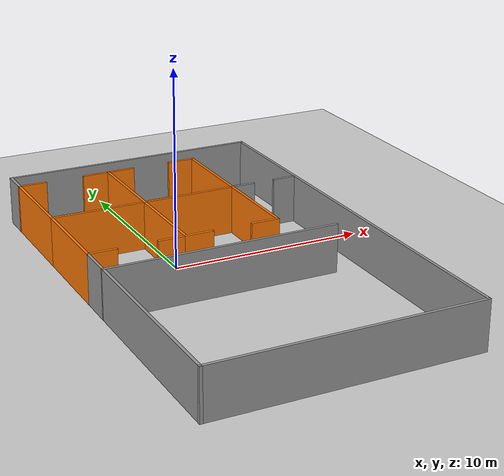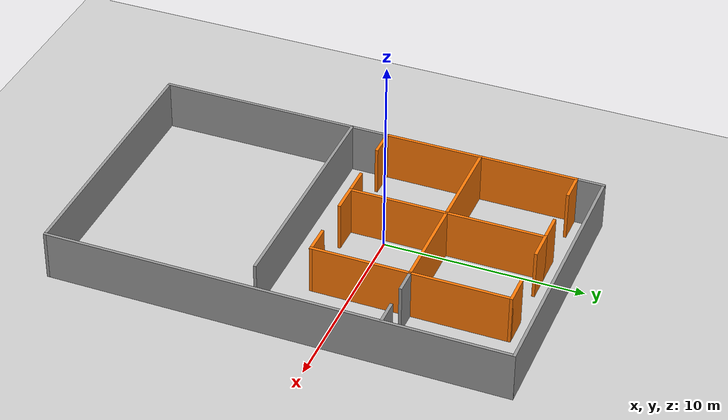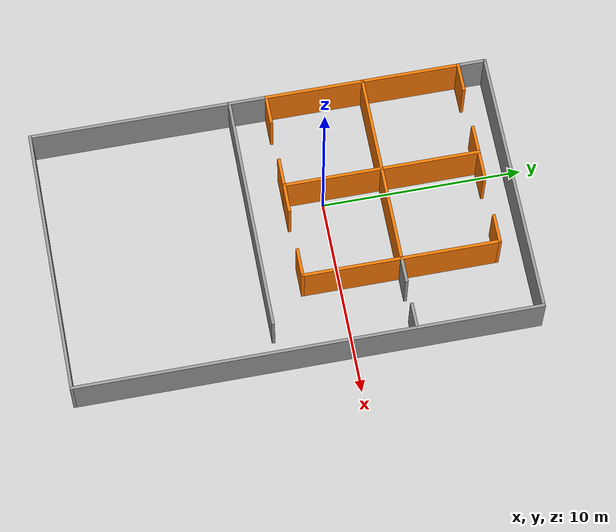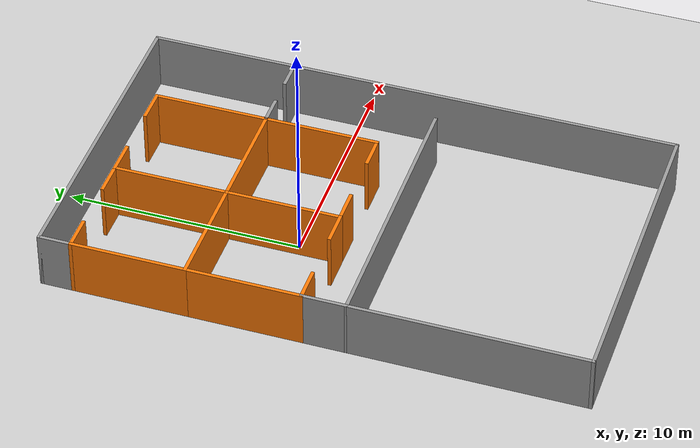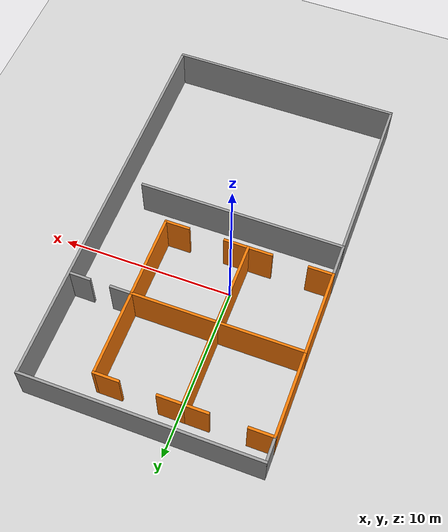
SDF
<sdf version="1.6">
 <world name="default">
  <light name="sun" type="directional">
   <pose>0 0 10 0 -0 0</pose>
   <diffuse>0.8 0.8 0.8 1</diffuse>
   <specular>0.1 0.1 0.1 1</specular>
   <attenuation>
    <range>1000</range>
    <constant>0.9</constant>
    <linear>0.01</linear>
    <quadratic>0.001</quadratic>
   </attenuation>
   <direction>-0.5 0.5 -1</direction>
  </light>
  <model name="ground_plane">
   <static>1</static>
   <link name="link">
    <collision name="collision">
     <geometry><plane><normal>0 0 1</normal><size>100 100</size></plane></geometry>
     <surface><friction><ode><mu>100</mu><mu2>50</mu2></ode></friction></surface>
    </collision>
    <visual name="visual">
     <cast_shadows>0</cast_shadows>
     <geometry><plane><normal>0 0 1</normal><size>100 100</size></plane></geometry>
     <material>
      <script><uri>file://media/materials/scripts/gazebo.material</uri><name>Gazebo/Grey</name></script>
     </material>
    </visual>
   </link>
  </model>
  <gravity>0 0 -9.8</gravity>
  <magnetic_field>6e-06 2.3e-05 -4.2e-05</magnetic_field>
  <atmosphere type="adiabatic"/>
  <physics name="default_physics" default="0" type="ode">
   <max_step_size>0.001</max_step_size>
   <real_time_factor>1</real_time_factor>
   <real_time_update_rate>1000</real_time_update_rate>
  </physics>
  <scene><ambient>0.4 0.4 0.4 1</ambient><background>0.7 0.7 0.7 1</background><shadows>1</shadows></scene>
  <spherical_coordinates>
   <surface_model>EARTH_WGS84</surface_model>
   <latitude_deg>0</latitude_deg>
   <longitude_deg>0</longitude_deg>
   <elevation>0</elevation>
   <heading_deg>0</heading_deg>
  </spherical_coordinates>
  <model name="x_com_test_room">
   <pose>1.485 -2.255 0 0 -0 0</pose>
   <link name="Wall_0">
    <collision name="Wall_0_Collision">
     <geometry><box><size>5 0.15 2.5</size></box></geometry>
     <pose>0 0 1.25 0 -0 0</pose>
    </collision>
    <visual name="Wall_0_Visual">
     <pose>0 0 1.25 0 -0 0</pose>
     <geometry><box><size>5 0.15 2.5</size></box></geometry>
     <material>
      <script><uri>file://media/materials/scripts/gazebo.material</uri><name>Gazebo/Grey</name></script>
      <ambient>0.996078 0.47451 0.0196078 1</ambient>
     </material>
    </visual>
    <pose>-1.825 2.8 0 0 -0 1.5708</pose>
   </link>
   <link name="Wall_10">
    <collision name="Wall_10_Collision">
     <geometry><box><size>1.5 0.15 2.5</size></box></geometry>
     <pose>0 0 1.25 0 -0 0</pose>
    </collision>
    <visual name="Wall_10_Visual">
     <pose>0 0 1.25 0 -0 0</pose>
     <geometry><box><size>1.5 0.15 2.5</size></box></geometry>
     <material>
      <script><uri>file://media/materials/scripts/gazebo.material</uri><name>Gazebo/Grey</name></script>
      <ambient>0.996078 0.47451 0.0196078 1</ambient>
     </material>
    </visual>
    <pose>-2.5 0.375 0 0 -0 3.14159</pose>
   </link>
   <link name="Wall_13">
    <collision name="Wall_13_Collision">
     <geometry><box><size>5 0.15 2.5</size></box></geometry>
     <pose>0 0 1.25 0 -0 0</pose>
    </collision>
    <visual name="Wall_13_Visual">
     <pose>0 0 1.25 0 -0 0</pose>
     <geometry><box><size>5 0.15 2.5</size></box></geometry>
     <material>
      <script><uri>file://media/materials/scripts/gazebo.material</uri><name>Gazebo/Grey</name></script>
      <ambient>0.996078 0.47451 0.0196078 1</ambient>
     </material>
    </visual>
    <pose>-4.25 5.225 0 0 -0 3.14159</pose>
   </link>
   <link name="Wall_14">
    <collision name="Wall_14_Collision">
     <geometry><box><size>5 0.15 2.5</size></box></geometry>
     <pose>0 0 1.25 0 -0 0</pose>
    </collision>
    <visual name="Wall_14_Visual">
     <pose>0 0 1.25 0 -0 0</pose>
     <geometry><box><size>5 0.15 2.5</size></box></geometry>
     <material>
      <script><uri>file://media/materials/scripts/gazebo.material</uri><name>Gazebo/Grey</name></script>
      <ambient>0.996078 0.47451 0.0196078 1</ambient>
     </material>
    </visual>
    <pose>-6.675 2.8 0 0 0 -1.5708</pose>
   </link>
   <link name="Wall_15">
    <collision name="Wall_15_Collision">
     <geometry><box><size>1.5 0.15 2.5</size></box></geometry>
     <pose>0 0 1.25 0 -0 0</pose>
    </collision>
    <visual name="Wall_15_Visual">
     <pose>0 0 1.25 0 -0 0</pose>
     <geometry><box><size>1.5 0.15 2.5</size></box></geometry>
     <material>
      <script><uri>file://media/materials/scripts/gazebo.material</uri><name>Gazebo/Grey</name></script>
      <ambient>0.996078 0.47451 0.0196078 1</ambient>
     </material>
    </visual>
    <pose>-6 0.375 0 0 -0 0</pose>
   </link>
   <link name="Wall_17">
    <collision name="Wall_17_Collision">
     <geometry><box><size>12 0.15 2.5</size></box></geometry>
     <pose>0 0 1.25 0 -0 0</pose>
    </collision>
    <visual name="Wall_17_Visual">
     <pose>0 0 1.25 0 -0 0</pose>
     <geometry><box><size>12 0.15 2.5</size></box></geometry>
     <material>
      <script><uri>file://media/materials/scripts/gazebo.material</uri><name>Gazebo/Grey</name></script>
      <ambient>1 1 1 1</ambient>
     </material>
    </visual>
    <pose>-0.75 -1.475 0 0 -0 3.14159</pose>
   </link>
   <link name="Wall_18">
    <collision name="Wall_18_Collision">
     <geometry><box><size>2 0.15 2.5</size></box></geometry>
     <pose>0 0 1.25 0 -0 0</pose>
    </collision>
    <visual name="Wall_18_Visual">
     <pose>0 0 1.25 0 -0 0</pose>
     <geometry><box><size>2 0.15 2.5</size></box></geometry>
     <material>
      <script><uri>file://media/materials/scripts/gazebo.material</uri><name>Gazebo/Grey</name></script>
      <ambient>1 1 1 1</ambient>
     </material>
    </visual>
    <pose>-6.675 -0.55 0 0 -0 1.5708</pose>
   </link>
   <link name="Wall_2">
    <collision name="Wall_2_Collision">
     <geometry><box><size>5 0.15 2.5</size></box></geometry>
     <pose>0 0 1.25 0 -0 0</pose>
    </collision>
    <visual name="Wall_2_Visual">
     <pose>0 0 1.25 0 -0 0</pose>
     <geometry><box><size>5 0.15 2.5</size></box></geometry>
     <material>
      <script><uri>file://media/materials/scripts/gazebo.material</uri><name>Gazebo/Grey</name></script>
      <ambient>0.996078 0.47451 0.0196078 1</ambient>
     </material>
    </visual>
    <pose>0.6 5.225 0 0 -0 3.14159</pose>
   </link>
   <link name="Wall_22">
    <collision name="Wall_22_Collision">
     <geometry><box><size>5 0.15 2.5</size></box></geometry>
     <pose>0 0 1.25 0 -0 0</pose>
    </collision>
    <visual name="Wall_22_Visual">
     <pose>0 0 1.25 0 -0 0</pose>
     <geometry><box><size>5 0.15 2.5</size></box></geometry>
     <material>
      <script><uri>file://media/materials/scripts/gazebo.material</uri><name>Gazebo/Grey</name></script>
      <ambient>0.996078 0.47451 0.0196078 1</ambient>
     </material>
    </visual>
    <pose>-6.675 7.65 0 0 0 -1.5708</pose>
   </link>
   <link name="Wall_24">
    <collision name="Wall_24_Collision">
     <geometry><box><size>5 0.15 2.5</size></box></geometry>
     <pose>0 0 1.25 0 -0 0</pose>
    </collision>
    <visual name="Wall_24_Visual">
     <pose>0 0 1.25 0 -0 0</pose>
     <geometry><box><size>5 0.15 2.5</size></box></geometry>
     <material>
      <script><uri>file://media/materials/scripts/gazebo.material</uri><name>Gazebo/Grey</name></script>
      <ambient>0.996078 0.47451 0.0196078 1</ambient>
     </material>
    </visual>
    <pose>-1.825 7.65 0 0 -0 1.5708</pose>
   </link>
   <link name="Wall_27">
    <collision name="Wall_27_Collision">
     <geometry><box><size>5 0.15 2.5</size></box></geometry>
     <pose>0 0 1.25 0 -0 0</pose>
    </collision>
    <visual name="Wall_27_Visual">
     <pose>0 0 1.25 0 -0 0</pose>
     <geometry><box><size>5 0.15 2.5</size></box></geometry>
     <material>
      <script><uri>file://media/materials/scripts/gazebo.material</uri><name>Gazebo/Grey</name></script>
      <ambient>0.996078 0.47451 0.0196078 1</ambient>
     </material>
    </visual>
    <pose>3.025 7.65 0 0 -0 1.5708</pose>
   </link>
   <link name="Wall_28">
    <collision name="Wall_28_Collision">
     <geometry><box><size>1.5 0.15 2.5</size></box></geometry>
     <pose>0 0 1.25 0 -0 0</pose>
    </collision>
    <visual name="Wall_28_Visual">
     <pose>0 0 1.25 0 -0 0</pose>
     <geometry><box><size>1.5 0.15 2.5</size></box></geometry>
     <material>
      <script><uri>file://media/materials/scripts/gazebo.material</uri><name>Gazebo/Grey</name></script>
      <ambient>0.996078 0.47451 0.0196078 1</ambient>
     </material>
    </visual>
    <pose>2.35 10.075 0 0 -0 3.14159</pose>
   </link>
   <link name="Wall_30">
    <collision name="Wall_30_Collision">
     <geometry><box><size>1.5 0.15 2.5</size></box></geometry>
     <pose>0 0 1.25 0 -0 0</pose>
    </collision>
    <visual name="Wall_30_Visual">
     <pose>0 0 1.25 0 -0 0</pose>
     <geometry><box><size>1.5 0.15 2.5</size></box></geometry>
     <material>
      <script><uri>file://media/materials/scripts/gazebo.material</uri><name>Gazebo/Grey</name></script>
      <ambient>0.996078 0.47451 0.0196078 1</ambient>
     </material>
    </visual>
    <pose>-1.15 10.075 0 0 -0 0</pose>
   </link>
   <link name="Wall_32">
    <collision name="Wall_32_Collision">
     <geometry><box><size>1.5 0.15 2.5</size></box></geometry>
     <pose>0 0 1.25 0 -0 0</pose>
    </collision>
    <visual name="Wall_32_Visual">
     <pose>0 0 1.25 0 -0 0</pose>
     <geometry><box><size>1.5 0.15 2.5</size></box></geometry>
     <material>
      <script><uri>file://media/materials/scripts/gazebo.material</uri><name>Gazebo/Grey</name></script>
      <ambient>0.996078 0.47451 0.0196078 1</ambient>
     </material>
    </visual>
    <pose>-2.5 10.075 0 0 -0 3.14159</pose>
   </link>
   <link name="Wall_34">
    <collision name="Wall_34_Collision">
     <geometry><box><size>1.5 0.15 2.5</size></box></geometry>
     <pose>0 0 1.25 0 -0 0</pose>
    </collision>
    <visual name="Wall_34_Visual">
     <pose>0 0 1.25 0 -0 0</pose>
     <geometry><box><size>1.5 0.15 2.5</size></box></geometry>
     <material>
      <script><uri>file://media/materials/scripts/gazebo.material</uri><name>Gazebo/Grey</name></script>
      <ambient>0.996078 0.47451 0.0196078 1</ambient>
     </material>
    </visual>
    <pose>-6 10.075 0 0 -0 0</pose>
   </link>
   <link name="Wall_4">
    <collision name="Wall_4_Collision">
     <geometry><box><size>5 0.15 2.5</size></box></geometry>
     <pose>0 0 1.25 0 -0 0</pose>
    </collision>
    <visual name="Wall_4_Visual">
     <pose>0 0 1.25 0 -0 0</pose>
     <geometry><box><size>5 0.15 2.5</size></box></geometry>
     <material>
      <script><uri>file://media/materials/scripts/gazebo.material</uri><name>Gazebo/Grey</name></script>
      <ambient>0.996078 0.47451 0.0196078 1</ambient>
     </material>
    </visual>
    <pose>3.025 2.8 0 0 0 -1.5708</pose>
   </link>
   <link name="Wall_5">
    <collision name="Wall_5_Collision">
     <geometry><box><size>1.5 0.15 2.5</size></box></geometry>
     <pose>0 0 1.25 0 -0 0</pose>
    </collision>
    <visual name="Wall_5_Visual">
     <pose>0 0 1.25 0 -0 0</pose>
     <geometry><box><size>1.5 0.15 2.5</size></box></geometry>
     <material>
      <script><uri>file://media/materials/scripts/gazebo.material</uri><name>Gazebo/Grey</name></script>
      <ambient>0.996078 0.47451 0.0196078 1</ambient>
     </material>
    </visual>
    <pose>2.35 0.375 0 0 -0 3.14159</pose>
   </link>
   <link name="Wall_54">
    <collision name="Wall_54_Collision">
     <geometry><box><size>1.5 0.15 2.5</size></box></geometry>
     <pose>0 0 1.25 0 -0 0</pose>
    </collision>
    <visual name="Wall_54_Visual">
     <pose>0 0 1.25 0 -0 0</pose>
     <geometry><box><size>1.5 0.15 2.5</size></box></geometry>
     <material>
      <script><uri>file://media/materials/scripts/gazebo.material</uri><name>Gazebo/Grey</name></script>
      <ambient>1 1 1 1</ambient>
     </material>
    </visual>
    <pose>-6.675 10.75 0 0 -0 1.5708</pose>
   </link>
   <link name="Wall_55">
    <collision name="Wall_55_Collision">
     <geometry><box><size>13.5 0.15 2.5</size></box></geometry>
     <pose>0 0 1.25 0 -0 0</pose>
    </collision>
    <visual name="Wall_55_Visual">
     <pose>0 0 1.25 0 -0 0</pose>
     <geometry><box><size>13.5 0.15 2.5</size></box></geometry>
     <material>
      <script><uri>file://media/materials/scripts/gazebo.material</uri><name>Gazebo/Grey</name></script>
      <ambient>1 1 1 1</ambient>
     </material>
    </visual>
    <pose>0 11.425 0 0 -0 0</pose>
   </link>
   <link name="Wall_56">
    <collision name="Wall_56_Collision">
     <geometry><box><size>23 0.15 2.5</size></box></geometry>
     <pose>0 0 1.25 0 -0 0</pose>
    </collision>
    <visual name="Wall_56_Visual">
     <pose>0 0 1.25 0 -0 0</pose>
     <geometry><box><size>23 0.15 2.5</size></box></geometry>
     <material>
      <script><uri>file://media/materials/scripts/gazebo.material</uri><name>Gazebo/Grey</name></script>
      <ambient>1 1 1 1</ambient>
     </material>
    </visual>
    <pose>6.675 0 0 0 0 -1.5708</pose>
   </link>
   <link name="Wall_62">
    <collision name="Wall_62_Collision">
     <geometry><box><size>1.25 0.15 2.5</size></box></geometry>
     <pose>0 0 1.25 0 -0 0</pose>
    </collision>
    <visual name="Wall_62_Visual">
     <pose>0 0 1.25 0 -0 0</pose>
     <geometry><box><size>1.25 0.15 2.5</size></box></geometry>
     <material>
      <script><uri>file://media/materials/scripts/gazebo.material</uri><name>Gazebo/Grey</name></script>
      <ambient>1 1 1 1</ambient>
     </material>
    </visual>
    <pose>6.01898 5.23616 0 0 -0 0</pose>
   </link>
   <link name="Wall_64">
    <collision name="Wall_64_Collision">
     <geometry><box><size>13.5 0.15 2.5</size></box></geometry>
     <pose>0 0 1.25 0 -0 0</pose>
    </collision>
    <visual name="Wall_64_Visual">
     <pose>0 0 1.25 0 -0 0</pose>
     <geometry><box><size>13.5 0.15 2.5</size></box></geometry>
     <material>
      <script><uri>file://media/materials/scripts/gazebo.material</uri><name>Gazebo/Grey</name></script>
      <ambient>1 1 1 1</ambient>
     </material>
    </visual>
    <pose>0 -11.425 0 0 -0 3.14159</pose>
   </link>
   <link name="Wall_65">
    <collision name="Wall_65_Collision">
     <geometry><box><size>10 0.15 2.5</size></box></geometry>
     <pose>0 0 1.25 0 -0 0</pose>
    </collision>
    <visual name="Wall_65_Visual">
     <pose>0 0 1.25 0 -0 0</pose>
     <geometry><box><size>10 0.15 2.5</size></box></geometry>
     <material>
      <script><uri>file://media/materials/scripts/gazebo.material</uri><name>Gazebo/Grey</name></script>
      <ambient>1 1 1 1</ambient>
     </material>
    </visual>
    <pose>-6.675 -6.5 0 0 -0 1.5708</pose>
   </link>
   <link name="Wall_67">
    <collision name="Wall_67_Collision">
     <geometry><box><size>1.25 0.15 2.5</size></box></geometry>
     <pose>0 0 1.25 0 -0 0</pose>
    </collision>
    <visual name="Wall_67_Visual">
     <pose>0 0 1.25 0 -0 0</pose>
     <geometry><box><size>1.25 0.15 2.5</size></box></geometry>
     <material>
      <script><uri>file://media/materials/scripts/gazebo.material</uri><name>Gazebo/Grey</name></script>
      <ambient>1 1 1 1</ambient>
     </material>
    </visual>
    <pose>3.65149 5.23151 0 0 -0 0</pose>
   </link>
   <link name="Wall_7">
    <collision name="Wall_7_Collision">
     <geometry><box><size>1.5 0.15 2.5</size></box></geometry>
     <pose>0 0 1.25 0 -0 0</pose>
    </collision>
    <visual name="Wall_7_Visual">
     <pose>0 0 1.25 0 -0 0</pose>
     <geometry><box><size>1.5 0.15 2.5</size></box></geometry>
     <material>
      <script><uri>file://media/materials/scripts/gazebo.material</uri><name>Gazebo/Grey</name></script>
      <ambient>0.996078 0.47451 0.0196078 1</ambient>
     </material>
    </visual>
    <pose>-1.15 0.375 0 0 -0 0</pose>
   </link>
   <static>1</static>
  </model>
 </world>
</sdf>
